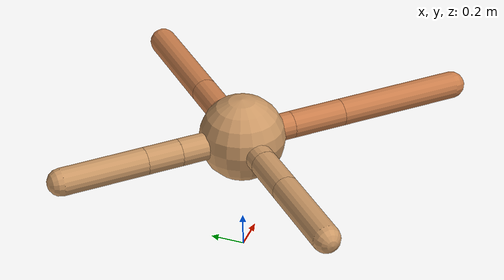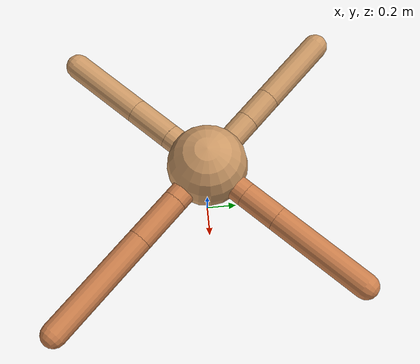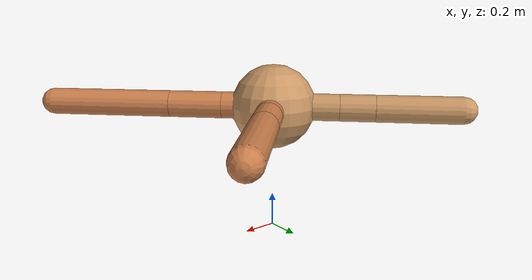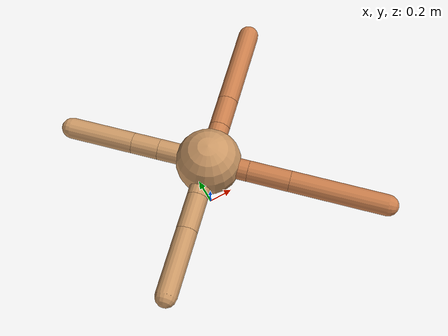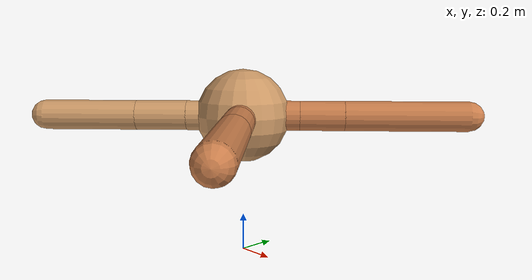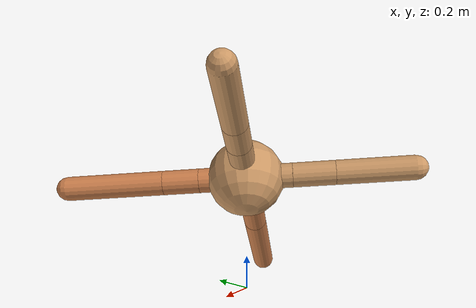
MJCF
<mujoco model="ant">
  <compiler angle="degree" coordinate="local" inertiafromgeom="true" />
  <option integrator="RK4" timestep="0.01" />
  <custom>
    <numeric data="0.0 0.0 0.55 1.0 0.0 0.0 0.0 0.0 1.0 0.0 -1.0 0.0 -1.0 0.0 1.0" name="init_qpos" />
  </custom>
  <default>
    <joint armature="1" damping="1" limited="true" />
    <geom conaffinity="0" condim="3" density="5.0" friction="1.5 0.1 0.1" margin="0.01" rgba="0.8 0.6 0.4 1" />
  </default>
  <worldbody>
    <body name="torso" pos="0 0 0.75">
      <geom name="torso_geom" pos="0 0 0" size="0.25" type="sphere" />

      <body name="front_left_leg" pos="0 0 0">
        <geom fromto="0.0 0.0 0.0 0.21552663130019273 0.21552663130019273 0.0" name="aux_1_geom" size="0.08" type="capsule" rgba=".8 .5 .3 1" />
        <body name="aux_1" pos="0.21552663130019273 0.21552663130019273 0.0">
          <joint axis="0 0 1" name="hip_1" pos="0.0 0.0 0.0" range="-40 40" type="hinge" />
          <geom fromto="0.0 0.0 0.0 0.16899849639501163 0.16899849639501163 0.0" name="left_leg_geom" size="0.08" type="capsule" rgba=".8 .5 .3 1" />
          <body pos="0.16899849639501163 0.16899849639501163 0.0" name="front_left_foot">
            <joint axis="-1 1 0" name="ankle_1" pos="0.0 0.0 0.0" range="30 100" type="hinge" />
            <geom fromto="0.0 0.0 0.0 0.46296387051026944 0.46296387051026944 0.0" name="left_ankle_geom" size="0.08" type="capsule" rgba=".8 .5 .3 1" />
          </body>
        </body>
      </body>
      <body name="front_right_leg" pos="0 0 0">
        <geom fromto="0.0 0.0 0.0 -0.27550214331546136 0.27550214331546136 0.0" name="aux_2_geom" size="0.08" type="capsule" />
        <body name="aux_2" pos="-0.27550214331546136 0.27550214331546136 0.0">
          <joint axis="0 0 1" name="hip_2" pos="0.0 0.0 0.0" range="-40 40" type="hinge" />
          <geom fromto="0.0 0.0 0.0 -0.14628572244228236 0.14628572244228236 0.0" name="right_leg_geom" size="0.08" type="capsule" />
          <body pos="-0.14628572244228236 0.14628572244228236 0.0" name="front_right_foot">
            <joint axis="1 1 0" name="ankle_2" pos="0.0 0.0 0.0" range="-100 -30" type="hinge" />
            <geom fromto="0.0 0.0 0.0 -0.35043251929353647 0.35043251929353647 0.0" name="right_ankle_geom" size="0.08" type="capsule" />
          </body>
        </body>
      </body>
      <body name="left_back_leg" pos="0 0 0">
        <geom fromto="0.0 0.0 0.0 -0.21490788773275776 -0.21490788773275776 0.0" name="aux_3_geom" size="0.08" type="capsule" />
        <body name="aux_3" pos="-0.21490788773275776 -0.21490788773275776 0.0">
          <joint axis="0 0 1" name="hip_3" pos="0.0 0.0 0.0" range="-40 40" type="hinge" />
          <geom fromto="0.0 0.0 0.0 -0.19371358936817995 -0.19371358936817995 0.0" name="back_leg_geom" size="0.08" type="capsule" />
          <body pos="-0.19371358936817995 -0.19371358936817995 0.0" name="left_back_foot">
            <joint axis="-1 1 0" name="ankle_3" pos="0.0 0.0 0.0" range="-100 -30" type="hinge" />
            <geom fromto="0.0 0.0 0.0 -0.3538756008433843 -0.3538756008433843 0.0" name="third_ankle_geom" size="0.08" type="capsule" />
          </body>
        </body>
      </body>
      <body name="right_back_leg" pos="0 0 0">
        <geom fromto="0.0 0.0 0.0 0.21734627586678915 -0.21734627586678915 0.0" name="aux_4_geom" size="0.08" type="capsule" rgba=".8 .5 .3 1" />
        <body name="aux_4" pos="0.21734627586678915 -0.21734627586678915 0.0">
          <joint axis="0 0 1" name="hip_4" pos="0.0 0.0 0.0" range="-40 40" type="hinge" />
          <geom fromto="0.0 0.0 0.0 0.2260842653815356 -0.2260842653815356 0.0" name="rightback_leg_geom" size="0.08" type="capsule" rgba=".8 .5 .3 1" />
          <body pos="0.2260842653815356 -0.2260842653815356 0.0" name="right_back_foot">
            <joint axis="1 1 0" name="ankle_4" pos="0.0 0.0 0.0" range="30 100" type="hinge" />
            <geom fromto="0.0 0.0 0.0 0.5219656341487772 -0.5219656341487772 0.0" name="fourth_ankle_geom" size="0.08" type="capsule" rgba=".8 .5 .3 1" />
          </body>
        </body>
      </body>
    </body>
  </worldbody>
  <actuator>
    <motor ctrllimited="true" ctrlrange="-1.0 1.0" joint="hip_4" gear="150" />
    <motor ctrllimited="true" ctrlrange="-1.0 1.0" joint="ankle_4" gear="150" />
    <motor ctrllimited="true" ctrlrange="-1.0 1.0" joint="hip_1" gear="150" />
    <motor ctrllimited="true" ctrlrange="-1.0 1.0" joint="ankle_1" gear="150" />
    <motor ctrllimited="true" ctrlrange="-1.0 1.0" joint="hip_2" gear="150" />
    <motor ctrllimited="true" ctrlrange="-1.0 1.0" joint="ankle_2" gear="150" />
    <motor ctrllimited="true" ctrlrange="-1.0 1.0" joint="hip_3" gear="150" />
    <motor ctrllimited="true" ctrlrange="-1.0 1.0" joint="ankle_3" gear="150" />
  </actuator>
</mujoco>
